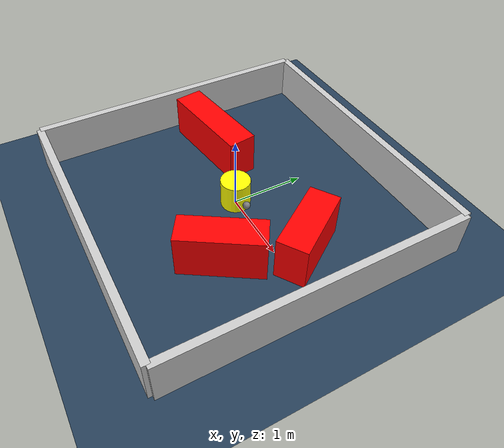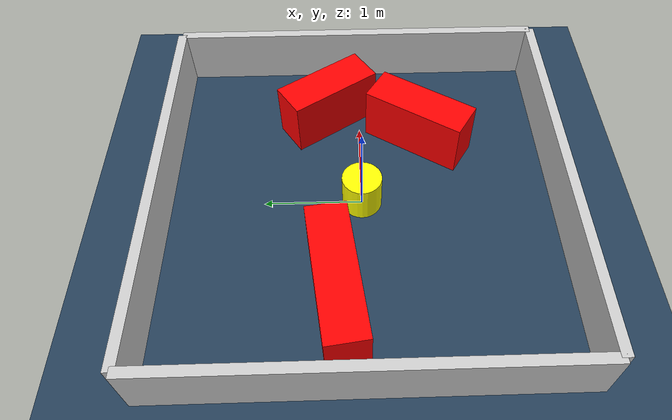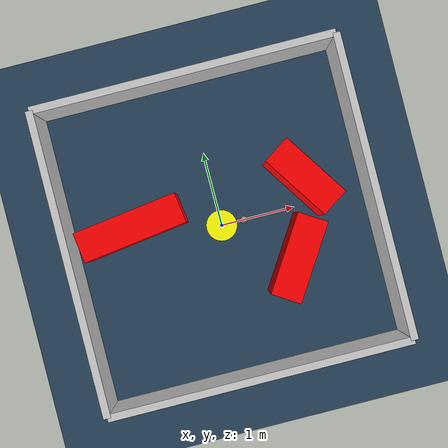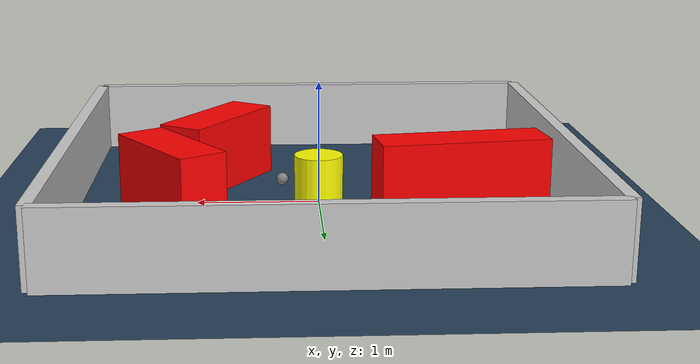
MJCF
<?xml version="1.0" ?>
<mujoco model="generated_environment">
  <option timestep="0.01" integrator="RK4" cone="elliptic"/>
  <default>
    <geom density="1"/>
  </default>
  <asset>
    <texture builtin="gradient" height="3072" rgb1="0.3 0.5 0.7" rgb2="0 0 0" type="skybox" width="512"/>
    <texture builtin="checker" height="300" mark="edge" markrgb="0.8 0.8 0.8" name="groundplane" rgb1="0.2 0.3 0.4" rgb2="0.1 0.2 0.3" type="2d" width="300"/>
    <material name="groundplane" reflectance="0.2" texrepeat="5 5" texture="groundplane" texuniform="true"/>
    <material name="robot" rgba="0.0 1.0 0.0 1"/>
  </asset>
  <worldbody>
    <light dir="0 0 -1" directional="true" pos="0 0 1.5"/>
    <geom condim="4" friction="1.0 0.005 0.001" material="groundplane" name="floor" size="0 0 0.05" type="plane"/>
    <body name="walls">
      <geom name="wall_1" condim="4" pos="-2.0 0.0 0.3" rgba="0.800000011920929 0.800000011920929 0.800000011920929 1.0" size="0.05 2.0 0.3" type="box"/>
      <geom name="wall_2" condim="4" pos="2.0 0.0 0.3" rgba="0.800000011920929 0.800000011920929 0.800000011920929 1.0" size="0.05 2.0 0.3" type="box"/>
      <geom name="wall_3" condim="4" pos="0.0 -2.0 0.3" rgba="0.800000011920929 0.800000011920929 0.800000011920929 1.0" size="2.0 0.05 0.3" type="box"/>
      <geom name="wall_4" condim="4" pos="0.0 2.0 0.3" rgba="0.800000011920929 0.800000011920929 0.800000011920929 1.0" size="2.0 0.05 0.3" type="box"/>
    </body>
    <body name="robot">
      <joint name="joint_x" type="slide" pos="0 0 0" axis="1 0 0"/>
      <joint name="joint_y" type="slide" pos="0 0 0" axis="0 1 0"/>
      <geom name="robot" type="sphere" pos="0.3 0.0 0.2" size="0.05" mass="5." friction="1.0 0.005 0.0001" condim="4" rgba="0.5 0.5 0.5 1.0"/>
      <site name="sensor_ball"/>
    </body>
    <body name="obstacle_movable_1">
      <geom name="obstacle_movable_1" condim="4" pos="0.0 0.0 0.2" euler="0 0 0.0" friction="1.0 0.005 0.001" rgba="1.0 1.0 0.0 1.0" size="0.2 0.2 0.0" type="cylinder" mass="0.1"/>
      <joint type="free"/>
    </body>
    <body name="obstacle_2_static">
      <geom name="obstacle_2_static" condim="4" pos="0.8507047869047302 -0.6399171446462941 0.3" euler="0 0 237.44651294708848" friction="1.0 0.005 0.001" rgba="1 0 0 1" size="0.5462849934844711 0.2 0.3" type="box"/>
    </body>
    <body name="obstacle_3_static">
      <geom name="obstacle_3_static" condim="4" pos="1.178190362496046 0.3415777901780419 0.3" euler="0 0 303.59834353914414" friction="1.0 0.005 0.001" rgba="1 0 0 1" size="0.5023105855024409 0.2 0.3" type="box"/>
    </body>
    <body name="obstacle_4_static">
      <geom name="obstacle_4_static" condim="4" pos="-1.1333743052902412 0.2586073766083927 0.3" euler="0 0 187.7392174888692" friction="1.0 0.005 0.001" rgba="1 0 0 1" size="0.6888100444453564 0.2 0.3" type="box"/>
    </body>
  </worldbody>
  <actuator>
    <motor name="actuator_x" joint="joint_x" gear="1" ctrlrange="-1 1"/>
    <motor name="actuator_y" joint="joint_y" gear="1" ctrlrange="-1 1"/>
  </actuator>
</mujoco>
